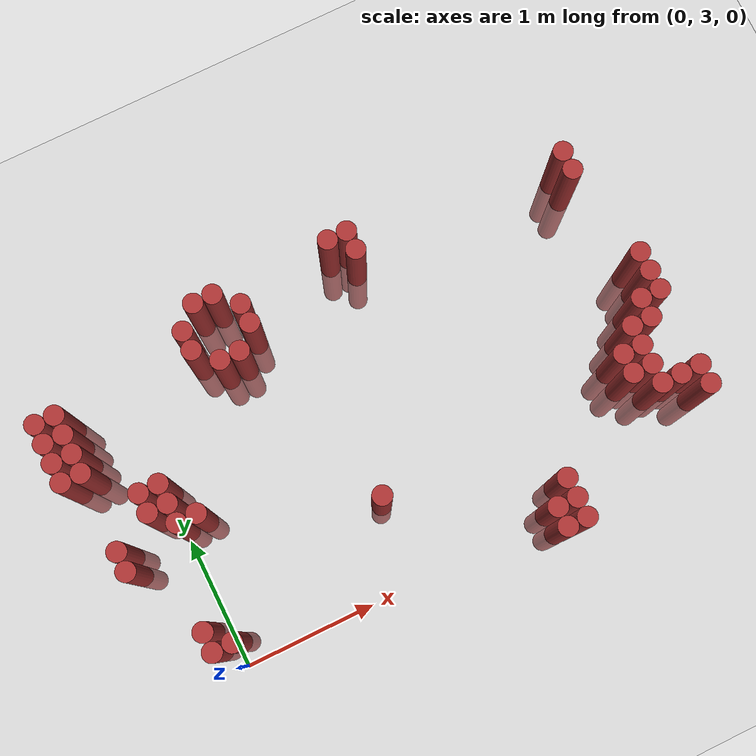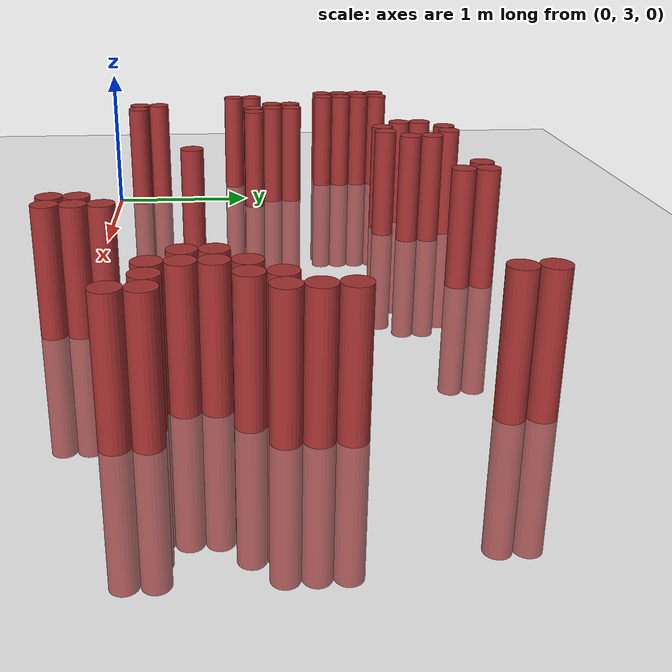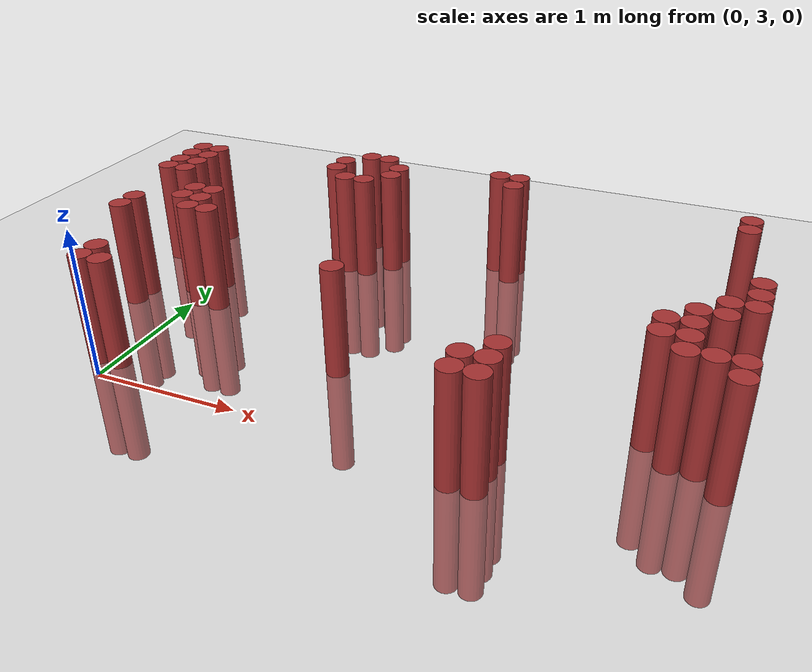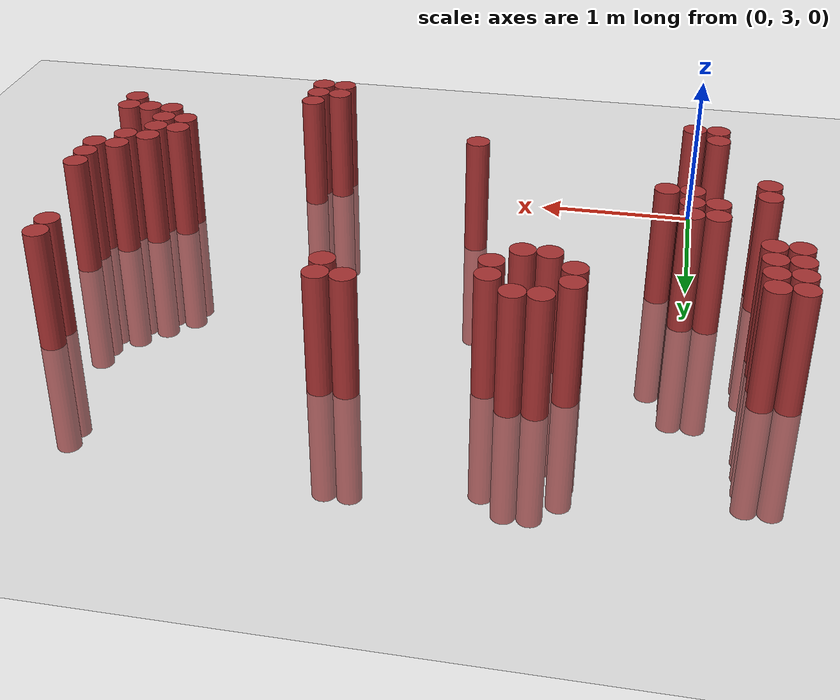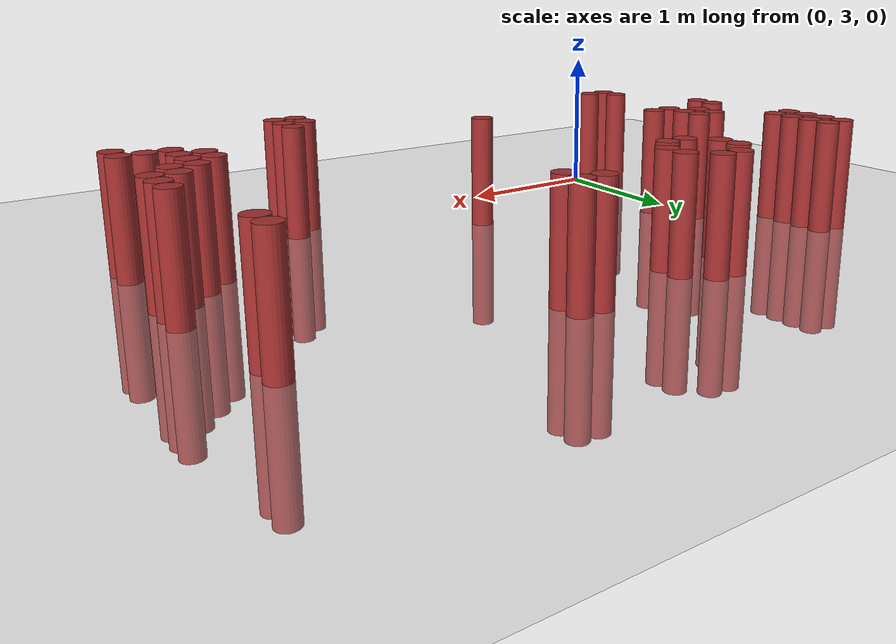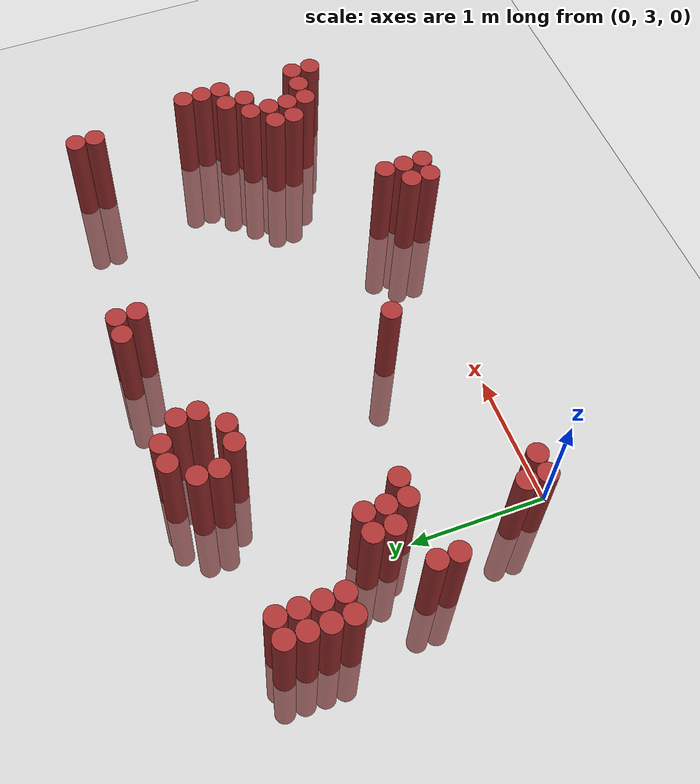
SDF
<sdf version="1.6">
 <world name="default">
  <model name="ground_plane">
   <static>1</static>
   <link name="link">
    <collision name="collision">
     <geometry><plane><normal>0 0 1</normal><size>100 100</size></plane></geometry>
     <surface><friction><ode><mu>100</mu><mu2>50</mu2></ode></friction></surface>
    </collision>
    <visual name="visual">
     <cast_shadows>0</cast_shadows>
     <geometry><plane><normal>0 0 1</normal><size>100 100</size></plane></geometry>
     <material>
      <script><uri>file://media/materials/scripts/gazebo.material</uri><name>Gazebo/Grey</name></script>
     </material>
    </visual>
   </link>
  </model>
  <model name="unit_cylinder_441">
   <static>1</static>
   <pose>-0.575000 4.675000 0.000000 0.000000 0.000000 0.000000</pose>
   <link name="link">
    <inertial>
     <mass>1</mass>
     <inertia><ixx>0.145833</ixx><ixy>0</ixy><ixz>0</ixz><iyy>0.145833</iyy><iyz>0</iyz><izz>0.125</izz></inertia>
    </inertial>
    <collision name="collision">
     <geometry><cylinder><radius>0.075000</radius><length>1.5</length></cylinder></geometry>
    </collision>
    <visual name="visual">
     <geometry><cylinder><radius>0.075000</radius><length>1.5</length></cylinder></geometry>
     <material>
      <ambient>0.648000 0.192000 0.192000 1</ambient>
      <diffuse>0.648000 0.192000 0.192000 1</diffuse>
     </material>
     <material>
      <script><name>Gazebo/Grey</name><uri>file://media/materials/scripts/gazebo.material</uri></script>
     </material>
    </visual>
   </link>
  </model>
  <model name="unit_cylinder_442">
   <static>1</static>
   <pose>-0.575000 4.825000 0.000000 0.000000 0.000000 0.000000</pose>
   <link name="link">
    <inertial>
     <mass>1</mass>
     <inertia><ixx>0.145833</ixx><ixy>0</ixy><ixz>0</ixz><iyy>0.145833</iyy><iyz>0</iyz><izz>0.125</izz></inertia>
    </inertial>
    <collision name="collision">
     <geometry><cylinder><radius>0.075000</radius><length>1.5</length></cylinder></geometry>
    </collision>
    <visual name="visual">
     <geometry><cylinder><radius>0.075000</radius><length>1.5</length></cylinder></geometry>
     <material>
      <ambient>0.648000 0.192000 0.192000 1</ambient>
      <diffuse>0.648000 0.192000 0.192000 1</diffuse>
     </material>
     <material>
      <script><name>Gazebo/Grey</name><uri>file://media/materials/scripts/gazebo.material</uri></script>
     </material>
    </visual>
   </link>
  </model>
  <model name="unit_cylinder_443">
   <static>1</static>
   <pose>-0.575000 4.975000 0.000000 0.000000 0.000000 0.000000</pose>
   <link name="link">
    <inertial>
     <mass>1</mass>
     <inertia><ixx>0.145833</ixx><ixy>0</ixy><ixz>0</ixz><iyy>0.145833</iyy><iyz>0</iyz><izz>0.125</izz></inertia>
    </inertial>
    <collision name="collision">
     <geometry><cylinder><radius>0.075000</radius><length>1.5</length></cylinder></geometry>
    </collision>
    <visual name="visual">
     <geometry><cylinder><radius>0.075000</radius><length>1.5</length></cylinder></geometry>
     <material>
      <ambient>0.648000 0.192000 0.192000 1</ambient>
      <diffuse>0.648000 0.192000 0.192000 1</diffuse>
     </material>
     <material>
      <script><name>Gazebo/Grey</name><uri>file://media/materials/scripts/gazebo.material</uri></script>
     </material>
    </visual>
   </link>
  </model>
  <model name="unit_cylinder_444">
   <static>1</static>
   <pose>-0.575000 5.125000 0.000000 0.000000 0.000000 0.000000</pose>
   <link name="link">
    <inertial>
     <mass>1</mass>
     <inertia><ixx>0.145833</ixx><ixy>0</ixy><ixz>0</ixz><iyy>0.145833</iyy><iyz>0</iyz><izz>0.125</izz></inertia>
    </inertial>
    <collision name="collision">
     <geometry><cylinder><radius>0.075000</radius><length>1.5</length></cylinder></geometry>
    </collision>
    <visual name="visual">
     <geometry><cylinder><radius>0.075000</radius><length>1.5</length></cylinder></geometry>
     <material>
      <ambient>0.648000 0.192000 0.192000 1</ambient>
      <diffuse>0.648000 0.192000 0.192000 1</diffuse>
     </material>
     <material>
      <script><name>Gazebo/Grey</name><uri>file://media/materials/scripts/gazebo.material</uri></script>
     </material>
    </visual>
   </link>
  </model>
  <model name="unit_cylinder_446">
   <static>1</static>
   <pose>-0.425000 3.925000 0.000000 0.000000 0.000000 0.000000</pose>
   <link name="link">
    <inertial>
     <mass>1</mass>
     <inertia><ixx>0.145833</ixx><ixy>0</ixy><ixz>0</ixz><iyy>0.145833</iyy><iyz>0</iyz><izz>0.125</izz></inertia>
    </inertial>
    <collision name="collision">
     <geometry><cylinder><radius>0.075000</radius><length>1.5</length></cylinder></geometry>
    </collision>
    <visual name="visual">
     <geometry><cylinder><radius>0.075000</radius><length>1.5</length></cylinder></geometry>
     <material>
      <ambient>0.648000 0.192000 0.192000 1</ambient>
      <diffuse>0.648000 0.192000 0.192000 1</diffuse>
     </material>
     <material>
      <script><name>Gazebo/Grey</name><uri>file://media/materials/scripts/gazebo.material</uri></script>
     </material>
    </visual>
   </link>
  </model>
  <model name="unit_cylinder_447">
   <static>1</static>
   <pose>-0.425000 4.075000 0.000000 0.000000 0.000000 0.000000</pose>
   <link name="link">
    <inertial>
     <mass>1</mass>
     <inertia><ixx>0.145833</ixx><ixy>0</ixy><ixz>0</ixz><iyy>0.145833</iyy><iyz>0</iyz><izz>0.125</izz></inertia>
    </inertial>
    <collision name="collision">
     <geometry><cylinder><radius>0.075000</radius><length>1.5</length></cylinder></geometry>
    </collision>
    <visual name="visual">
     <geometry><cylinder><radius>0.075000</radius><length>1.5</length></cylinder></geometry>
     <material>
      <ambient>0.648000 0.192000 0.192000 1</ambient>
      <diffuse>0.648000 0.192000 0.192000 1</diffuse>
     </material>
     <material>
      <script><name>Gazebo/Grey</name><uri>file://media/materials/scripts/gazebo.material</uri></script>
     </material>
    </visual>
   </link>
  </model>
  <model name="unit_cylinder_448">
   <static>1</static>
   <pose>-0.425000 4.675000 0.000000 0.000000 0.000000 0.000000</pose>
   <link name="link">
    <inertial>
     <mass>1</mass>
     <inertia><ixx>0.145833</ixx><ixy>0</ixy><ixz>0</ixz><iyy>0.145833</iyy><iyz>0</iyz><izz>0.125</izz></inertia>
    </inertial>
    <collision name="collision">
     <geometry><cylinder><radius>0.075000</radius><length>1.5</length></cylinder></geometry>
    </collision>
    <visual name="visual">
     <geometry><cylinder><radius>0.075000</radius><length>1.5</length></cylinder></geometry>
     <material>
      <ambient>0.648000 0.192000 0.192000 1</ambient>
      <diffuse>0.648000 0.192000 0.192000 1</diffuse>
     </material>
     <material>
      <script><name>Gazebo/Grey</name><uri>file://media/materials/scripts/gazebo.material</uri></script>
     </material>
    </visual>
   </link>
  </model>
  <model name="unit_cylinder_449">
   <static>1</static>
   <pose>-0.425000 4.825000 0.000000 0.000000 0.000000 0.000000</pose>
   <link name="link">
    <inertial>
     <mass>1</mass>
     <inertia><ixx>0.145833</ixx><ixy>0</ixy><ixz>0</ixz><iyy>0.145833</iyy><iyz>0</iyz><izz>0.125</izz></inertia>
    </inertial>
    <collision name="collision">
     <geometry><cylinder><radius>0.075000</radius><length>1.5</length></cylinder></geometry>
    </collision>
    <visual name="visual">
     <geometry><cylinder><radius>0.075000</radius><length>1.5</length></cylinder></geometry>
     <material>
      <ambient>0.648000 0.192000 0.192000 1</ambient>
      <diffuse>0.648000 0.192000 0.192000 1</diffuse>
     </material>
     <material>
      <script><name>Gazebo/Grey</name><uri>file://media/materials/scripts/gazebo.material</uri></script>
     </material>
    </visual>
   </link>
  </model>
  <model name="unit_cylinder_450">
   <static>1</static>
   <pose>-0.425000 4.975000 0.000000 0.000000 0.000000 0.000000</pose>
   <link name="link">
    <inertial>
     <mass>1</mass>
     <inertia><ixx>0.145833</ixx><ixy>0</ixy><ixz>0</ixz><iyy>0.145833</iyy><iyz>0</iyz><izz>0.125</izz></inertia>
    </inertial>
    <collision name="collision">
     <geometry><cylinder><radius>0.075000</radius><length>1.5</length></cylinder></geometry>
    </collision>
    <visual name="visual">
     <geometry><cylinder><radius>0.075000</radius><length>1.5</length></cylinder></geometry>
     <material>
      <ambient>0.648000 0.192000 0.192000 1</ambient>
      <diffuse>0.648000 0.192000 0.192000 1</diffuse>
     </material>
     <material>
      <script><name>Gazebo/Grey</name><uri>file://media/materials/scripts/gazebo.material</uri></script>
     </material>
    </visual>
   </link>
  </model>
  <model name="unit_cylinder_451">
   <static>1</static>
   <pose>-0.425000 5.125000 0.000000 0.000000 0.000000 0.000000</pose>
   <link name="link">
    <inertial>
     <mass>1</mass>
     <inertia><ixx>0.145833</ixx><ixy>0</ixy><ixz>0</ixz><iyy>0.145833</iyy><iyz>0</iyz><izz>0.125</izz></inertia>
    </inertial>
    <collision name="collision">
     <geometry><cylinder><radius>0.075000</radius><length>1.5</length></cylinder></geometry>
    </collision>
    <visual name="visual">
     <geometry><cylinder><radius>0.075000</radius><length>1.5</length></cylinder></geometry>
     <material>
      <ambient>0.648000 0.192000 0.192000 1</ambient>
      <diffuse>0.648000 0.192000 0.192000 1</diffuse>
     </material>
     <material>
      <script><name>Gazebo/Grey</name><uri>file://media/materials/scripts/gazebo.material</uri></script>
     </material>
    </visual>
   </link>
  </model>
  <model name="unit_cylinder_457">
   <static>1</static>
   <pose>-0.125000 3.175000 0.000000 0.000000 0.000000 0.000000</pose>
   <link name="link">
    <inertial>
     <mass>1</mass>
     <inertia><ixx>0.145833</ixx><ixy>0</ixy><ixz>0</ixz><iyy>0.145833</iyy><iyz>0</iyz><izz>0.125</izz></inertia>
    </inertial>
    <collision name="collision">
     <geometry><cylinder><radius>0.075000</radius><length>1.5</length></cylinder></geometry>
    </collision>
    <visual name="visual">
     <geometry><cylinder><radius>0.075000</radius><length>1.5</length></cylinder></geometry>
     <material>
      <ambient>0.648000 0.192000 0.192000 1</ambient>
      <diffuse>0.648000 0.192000 0.192000 1</diffuse>
     </material>
     <material>
      <script><name>Gazebo/Grey</name><uri>file://media/materials/scripts/gazebo.material</uri></script>
     </material>
    </visual>
   </link>
  </model>
  <model name="unit_cylinder_458">
   <static>1</static>
   <pose>-0.125000 3.325000 0.000000 0.000000 0.000000 0.000000</pose>
   <link name="link">
    <inertial>
     <mass>1</mass>
     <inertia><ixx>0.145833</ixx><ixy>0</ixy><ixz>0</ixz><iyy>0.145833</iyy><iyz>0</iyz><izz>0.125</izz></inertia>
    </inertial>
    <collision name="collision">
     <geometry><cylinder><radius>0.075000</radius><length>1.5</length></cylinder></geometry>
    </collision>
    <visual name="visual">
     <geometry><cylinder><radius>0.075000</radius><length>1.5</length></cylinder></geometry>
     <material>
      <ambient>0.648000 0.192000 0.192000 1</ambient>
      <diffuse>0.648000 0.192000 0.192000 1</diffuse>
     </material>
     <material>
      <script><name>Gazebo/Grey</name><uri>file://media/materials/scripts/gazebo.material</uri></script>
     </material>
    </visual>
   </link>
  </model>
  <model name="unit_cylinder_459">
   <static>1</static>
   <pose>-0.125000 4.225000 0.000000 0.000000 0.000000 0.000000</pose>
   <link name="link">
    <inertial>
     <mass>1</mass>
     <inertia><ixx>0.145833</ixx><ixy>0</ixy><ixz>0</ixz><iyy>0.145833</iyy><iyz>0</iyz><izz>0.125</izz></inertia>
    </inertial>
    <collision name="collision">
     <geometry><cylinder><radius>0.075000</radius><length>1.5</length></cylinder></geometry>
    </collision>
    <visual name="visual">
     <geometry><cylinder><radius>0.075000</radius><length>1.5</length></cylinder></geometry>
     <material>
      <ambient>0.648000 0.192000 0.192000 1</ambient>
      <diffuse>0.648000 0.192000 0.192000 1</diffuse>
     </material>
     <material>
      <script><name>Gazebo/Grey</name><uri>file://media/materials/scripts/gazebo.material</uri></script>
     </material>
    </visual>
   </link>
  </model>
  <model name="unit_cylinder_460">
   <static>1</static>
   <pose>-0.125000 4.375000 0.000000 0.000000 0.000000 0.000000</pose>
   <link name="link">
    <inertial>
     <mass>1</mass>
     <inertia><ixx>0.145833</ixx><ixy>0</ixy><ixz>0</ixz><iyy>0.145833</iyy><iyz>0</iyz><izz>0.125</izz></inertia>
    </inertial>
    <collision name="collision">
     <geometry><cylinder><radius>0.075000</radius><length>1.5</length></cylinder></geometry>
    </collision>
    <visual name="visual">
     <geometry><cylinder><radius>0.075000</radius><length>1.5</length></cylinder></geometry>
     <material>
      <ambient>0.648000 0.192000 0.192000 1</ambient>
      <diffuse>0.648000 0.192000 0.192000 1</diffuse>
     </material>
     <material>
      <script><name>Gazebo/Grey</name><uri>file://media/materials/scripts/gazebo.material</uri></script>
     </material>
    </visual>
   </link>
  </model>
  <model name="unit_cylinder_463">
   <static>1</static>
   <pose>0.025000 3.175000 0.000000 0.000000 0.000000 0.000000</pose>
   <link name="link">
    <inertial>
     <mass>1</mass>
     <inertia><ixx>0.145833</ixx><ixy>0</ixy><ixz>0</ixz><iyy>0.145833</iyy><iyz>0</iyz><izz>0.125</izz></inertia>
    </inertial>
    <collision name="collision">
     <geometry><cylinder><radius>0.075000</radius><length>1.5</length></cylinder></geometry>
    </collision>
    <visual name="visual">
     <geometry><cylinder><radius>0.075000</radius><length>1.5</length></cylinder></geometry>
     <material>
      <ambient>0.648000 0.192000 0.192000 1</ambient>
      <diffuse>0.648000 0.192000 0.192000 1</diffuse>
     </material>
     <material>
      <script><name>Gazebo/Grey</name><uri>file://media/materials/scripts/gazebo.material</uri></script>
     </material>
    </visual>
   </link>
  </model>
  <model name="unit_cylinder_464">
   <static>1</static>
   <pose>0.025000 4.075000 0.000000 0.000000 0.000000 0.000000</pose>
   <link name="link">
    <inertial>
     <mass>1</mass>
     <inertia><ixx>0.145833</ixx><ixy>0</ixy><ixz>0</ixz><iyy>0.145833</iyy><iyz>0</iyz><izz>0.125</izz></inertia>
    </inertial>
    <collision name="collision">
     <geometry><cylinder><radius>0.075000</radius><length>1.5</length></cylinder></geometry>
    </collision>
    <visual name="visual">
     <geometry><cylinder><radius>0.075000</radius><length>1.5</length></cylinder></geometry>
     <material>
      <ambient>0.648000 0.192000 0.192000 1</ambient>
      <diffuse>0.648000 0.192000 0.192000 1</diffuse>
     </material>
     <material>
      <script><name>Gazebo/Grey</name><uri>file://media/materials/scripts/gazebo.material</uri></script>
     </material>
    </visual>
   </link>
  </model>
  <model name="unit_cylinder_465">
   <static>1</static>
   <pose>0.025000 4.225000 0.000000 0.000000 0.000000 0.000000</pose>
   <link name="link">
    <inertial>
     <mass>1</mass>
     <inertia><ixx>0.145833</ixx><ixy>0</ixy><ixz>0</ixz><iyy>0.145833</iyy><iyz>0</iyz><izz>0.125</izz></inertia>
    </inertial>
    <collision name="collision">
     <geometry><cylinder><radius>0.075000</radius><length>1.5</length></cylinder></geometry>
    </collision>
    <visual name="visual">
     <geometry><cylinder><radius>0.075000</radius><length>1.5</length></cylinder></geometry>
     <material>
      <ambient>0.648000 0.192000 0.192000 1</ambient>
      <diffuse>0.648000 0.192000 0.192000 1</diffuse>
     </material>
     <material>
      <script><name>Gazebo/Grey</name><uri>file://media/materials/scripts/gazebo.material</uri></script>
     </material>
    </visual>
   </link>
  </model>
  <model name="unit_cylinder_466">
   <static>1</static>
   <pose>0.025000 4.375000 0.000000 0.000000 0.000000 0.000000</pose>
   <link name="link">
    <inertial>
     <mass>1</mass>
     <inertia><ixx>0.145833</ixx><ixy>0</ixy><ixz>0</ixz><iyy>0.145833</iyy><iyz>0</iyz><izz>0.125</izz></inertia>
    </inertial>
    <collision name="collision">
     <geometry><cylinder><radius>0.075000</radius><length>1.5</length></cylinder></geometry>
    </collision>
    <visual name="visual">
     <geometry><cylinder><radius>0.075000</radius><length>1.5</length></cylinder></geometry>
     <material>
      <ambient>0.648000 0.192000 0.192000 1</ambient>
      <diffuse>0.648000 0.192000 0.192000 1</diffuse>
     </material>
     <material>
      <script><name>Gazebo/Grey</name><uri>file://media/materials/scripts/gazebo.material</uri></script>
     </material>
    </visual>
   </link>
  </model>
  <model name="unit_cylinder_467">
   <static>1</static>
   <pose>0.175000 4.075000 0.000000 0.000000 0.000000 0.000000</pose>
   <link name="link">
    <inertial>
     <mass>1</mass>
     <inertia><ixx>0.145833</ixx><ixy>0</ixy><ixz>0</ixz><iyy>0.145833</iyy><iyz>0</iyz><izz>0.125</izz></inertia>
    </inertial>
    <collision name="collision">
     <geometry><cylinder><radius>0.075000</radius><length>1.5</length></cylinder></geometry>
    </collision>
    <visual name="visual">
     <geometry><cylinder><radius>0.075000</radius><length>1.5</length></cylinder></geometry>
     <material>
      <ambient>0.648000 0.192000 0.192000 1</ambient>
      <diffuse>0.648000 0.192000 0.192000 1</diffuse>
     </material>
     <material>
      <script><name>Gazebo/Grey</name><uri>file://media/materials/scripts/gazebo.material</uri></script>
     </material>
    </visual>
   </link>
  </model>
  <model name="unit_cylinder_473">
   <static>1</static>
   <pose>0.625000 5.125000 0.000000 0.000000 0.000000 0.000000</pose>
   <link name="link">
    <inertial>
     <mass>1</mass>
     <inertia><ixx>0.145833</ixx><ixy>0</ixy><ixz>0</ixz><iyy>0.145833</iyy><iyz>0</iyz><izz>0.125</izz></inertia>
    </inertial>
    <collision name="collision">
     <geometry><cylinder><radius>0.075000</radius><length>1.5</length></cylinder></geometry>
    </collision>
    <visual name="visual">
     <geometry><cylinder><radius>0.075000</radius><length>1.5</length></cylinder></geometry>
     <material>
      <ambient>0.648000 0.192000 0.192000 1</ambient>
      <diffuse>0.648000 0.192000 0.192000 1</diffuse>
     </material>
     <material>
      <script><name>Gazebo/Grey</name><uri>file://media/materials/scripts/gazebo.material</uri></script>
     </material>
    </visual>
   </link>
  </model>
  <model name="unit_cylinder_474">
   <static>1</static>
   <pose>0.625000 5.275000 0.000000 0.000000 0.000000 0.000000</pose>
   <link name="link">
    <inertial>
     <mass>1</mass>
     <inertia><ixx>0.145833</ixx><ixy>0</ixy><ixz>0</ixz><iyy>0.145833</iyy><iyz>0</iyz><izz>0.125</izz></inertia>
    </inertial>
    <collision name="collision">
     <geometry><cylinder><radius>0.075000</radius><length>1.5</length></cylinder></geometry>
    </collision>
    <visual name="visual">
     <geometry><cylinder><radius>0.075000</radius><length>1.5</length></cylinder></geometry>
     <material>
      <ambient>0.648000 0.192000 0.192000 1</ambient>
      <diffuse>0.648000 0.192000 0.192000 1</diffuse>
     </material>
     <material>
      <script><name>Gazebo/Grey</name><uri>file://media/materials/scripts/gazebo.material</uri></script>
     </material>
    </visual>
   </link>
  </model>
  <model name="unit_cylinder_476">
   <static>1</static>
   <pose>0.775000 4.975000 0.000000 0.000000 0.000000 0.000000</pose>
   <link name="link">
    <inertial>
     <mass>1</mass>
     <inertia><ixx>0.145833</ixx><ixy>0</ixy><ixz>0</ixz><iyy>0.145833</iyy><iyz>0</iyz><izz>0.125</izz></inertia>
    </inertial>
    <collision name="collision">
     <geometry><cylinder><radius>0.075000</radius><length>1.5</length></cylinder></geometry>
    </collision>
    <visual name="visual">
     <geometry><cylinder><radius>0.075000</radius><length>1.5</length></cylinder></geometry>
     <material>
      <ambient>0.648000 0.192000 0.192000 1</ambient>
      <diffuse>0.648000 0.192000 0.192000 1</diffuse>
     </material>
     <material>
      <script><name>Gazebo/Grey</name><uri>file://media/materials/scripts/gazebo.material</uri></script>
     </material>
    </visual>
   </link>
  </model>
  <model name="unit_cylinder_477">
   <static>1</static>
   <pose>0.775000 5.425000 0.000000 0.000000 0.000000 0.000000</pose>
   <link name="link">
    <inertial>
     <mass>1</mass>
     <inertia><ixx>0.145833</ixx><ixy>0</ixy><ixz>0</ixz><iyy>0.145833</iyy><iyz>0</iyz><izz>0.125</izz></inertia>
    </inertial>
    <collision name="collision">
     <geometry><cylinder><radius>0.075000</radius><length>1.5</length></cylinder></geometry>
    </collision>
    <visual name="visual">
     <geometry><cylinder><radius>0.075000</radius><length>1.5</length></cylinder></geometry>
     <material>
      <ambient>0.648000 0.192000 0.192000 1</ambient>
      <diffuse>0.648000 0.192000 0.192000 1</diffuse>
     </material>
     <material>
      <script><name>Gazebo/Grey</name><uri>file://media/materials/scripts/gazebo.material</uri></script>
     </material>
    </visual>
   </link>
  </model>
  <model name="unit_cylinder_478">
   <static>1</static>
   <pose>0.925000 4.975000 0.000000 0.000000 0.000000 0.000000</pose>
   <link name="link">
    <inertial>
     <mass>1</mass>
     <inertia><ixx>0.145833</ixx><ixy>0</ixy><ixz>0</ixz><iyy>0.145833</iyy><iyz>0</iyz><izz>0.125</izz></inertia>
    </inertial>
    <collision name="collision">
     <geometry><cylinder><radius>0.075000</radius><length>1.5</length></cylinder></geometry>
    </collision>
    <visual name="visual">
     <geometry><cylinder><radius>0.075000</radius><length>1.5</length></cylinder></geometry>
     <material>
      <ambient>0.648000 0.192000 0.192000 1</ambient>
      <diffuse>0.648000 0.192000 0.192000 1</diffuse>
     </material>
     <material>
      <script><name>Gazebo/Grey</name><uri>file://media/materials/scripts/gazebo.material</uri></script>
     </material>
    </visual>
   </link>
  </model>
  <model name="unit_cylinder_479">
   <static>1</static>
   <pose>0.925000 5.425000 0.000000 0.000000 0.000000 0.000000</pose>
   <link name="link">
    <inertial>
     <mass>1</mass>
     <inertia><ixx>0.145833</ixx><ixy>0</ixy><ixz>0</ixz><iyy>0.145833</iyy><iyz>0</iyz><izz>0.125</izz></inertia>
    </inertial>
    <collision name="collision">
     <geometry><cylinder><radius>0.075000</radius><length>1.5</length></cylinder></geometry>
    </collision>
    <visual name="visual">
     <geometry><cylinder><radius>0.075000</radius><length>1.5</length></cylinder></geometry>
     <material>
      <ambient>0.648000 0.192000 0.192000 1</ambient>
      <diffuse>0.648000 0.192000 0.192000 1</diffuse>
     </material>
     <material>
      <script><name>Gazebo/Grey</name><uri>file://media/materials/scripts/gazebo.material</uri></script>
     </material>
    </visual>
   </link>
  </model>
  <model name="unit_cylinder_480">
   <static>1</static>
   <pose>1.075000 5.125000 0.000000 0.000000 0.000000 0.000000</pose>
   <link name="link">
    <inertial>
     <mass>1</mass>
     <inertia><ixx>0.145833</ixx><ixy>0</ixy><ixz>0</ixz><iyy>0.145833</iyy><iyz>0</iyz><izz>0.125</izz></inertia>
    </inertial>
    <collision name="collision">
     <geometry><cylinder><radius>0.075000</radius><length>1.5</length></cylinder></geometry>
    </collision>
    <visual name="visual">
     <geometry><cylinder><radius>0.075000</radius><length>1.5</length></cylinder></geometry>
     <material>
      <ambient>0.648000 0.192000 0.192000 1</ambient>
      <diffuse>0.648000 0.192000 0.192000 1</diffuse>
     </material>
     <material>
      <script><name>Gazebo/Grey</name><uri>file://media/materials/scripts/gazebo.material</uri></script>
     </material>
    </visual>
   </link>
  </model>
  <model name="unit_cylinder_481">
   <static>1</static>
   <pose>1.075000 5.275000 0.000000 0.000000 0.000000 0.000000</pose>
   <link name="link">
    <inertial>
     <mass>1</mass>
     <inertia><ixx>0.145833</ixx><ixy>0</ixy><ixz>0</ixz><iyy>0.145833</iyy><iyz>0</iyz><izz>0.125</izz></inertia>
    </inertial>
    <collision name="collision">
     <geometry><cylinder><radius>0.075000</radius><length>1.5</length></cylinder></geometry>
    </collision>
    <visual name="visual">
     <geometry><cylinder><radius>0.075000</radius><length>1.5</length></cylinder></geometry>
     <material>
      <ambient>0.648000 0.192000 0.192000 1</ambient>
      <diffuse>0.648000 0.192000 0.192000 1</diffuse>
     </material>
     <material>
      <script><name>Gazebo/Grey</name><uri>file://media/materials/scripts/gazebo.material</uri></script>
     </material>
    </visual>
   </link>
  </model>
  <model name="unit_cylinder_482">
   <static>1</static>
   <pose>1.375000 3.625000 0.000000 0.000000 0.000000 0.000000</pose>
   <link name="link">
    <inertial>
     <mass>1</mass>
     <inertia><ixx>0.145833</ixx><ixy>0</ixy><ixz>0</ixz><iyy>0.145833</iyy><iyz>0</iyz><izz>0.125</izz></inertia>
    </inertial>
    <collision name="collision">
     <geometry><cylinder><radius>0.075000</radius><length>1.5</length></cylinder></geometry>
    </collision>
    <visual name="visual">
     <geometry><cylinder><radius>0.075000</radius><length>1.5</length></cylinder></geometry>
     <material>
      <ambient>0.648000 0.192000 0.192000 1</ambient>
      <diffuse>0.648000 0.192000 0.192000 1</diffuse>
     </material>
     <material>
      <script><name>Gazebo/Grey</name><uri>file://media/materials/scripts/gazebo.material</uri></script>
     </material>
    </visual>
   </link>
  </model>
  <model name="unit_cylinder_495">
   <static>1</static>
   <pose>1.825000 5.425000 0.000000 0.000000 0.000000 0.000000</pose>
   <link name="link">
    <inertial>
     <mass>1</mass>
     <inertia><ixx>0.145833</ixx><ixy>0</ixy><ixz>0</ixz><iyy>0.145833</iyy><iyz>0</iyz><izz>0.125</izz></inertia>
    </inertial>
    <collision name="collision">
     <geometry><cylinder><radius>0.075000</radius><length>1.5</length></cylinder></geometry>
    </collision>
    <visual name="visual">
     <geometry><cylinder><radius>0.075000</radius><length>1.5</length></cylinder></geometry>
     <material>
      <ambient>0.648000 0.192000 0.192000 1</ambient>
      <diffuse>0.648000 0.192000 0.192000 1</diffuse>
     </material>
     <material>
      <script><name>Gazebo/Grey</name><uri>file://media/materials/scripts/gazebo.material</uri></script>
     </material>
    </visual>
   </link>
  </model>
  <model name="unit_cylinder_498">
   <static>1</static>
   <pose>1.975000 5.275000 0.000000 0.000000 0.000000 0.000000</pose>
   <link name="link">
    <inertial>
     <mass>1</mass>
     <inertia><ixx>0.145833</ixx><ixy>0</ixy><ixz>0</ixz><iyy>0.145833</iyy><iyz>0</iyz><izz>0.125</izz></inertia>
    </inertial>
    <collision name="collision">
     <geometry><cylinder><radius>0.075000</radius><length>1.5</length></cylinder></geometry>
    </collision>
    <visual name="visual">
     <geometry><cylinder><radius>0.075000</radius><length>1.5</length></cylinder></geometry>
     <material>
      <ambient>0.648000 0.192000 0.192000 1</ambient>
      <diffuse>0.648000 0.192000 0.192000 1</diffuse>
     </material>
     <material>
      <script><name>Gazebo/Grey</name><uri>file://media/materials/scripts/gazebo.material</uri></script>
     </material>
    </visual>
   </link>
  </model>
  <model name="unit_cylinder_499">
   <static>1</static>
   <pose>1.975000 5.425000 0.000000 0.000000 0.000000 0.000000</pose>
   <link name="link">
    <inertial>
     <mass>1</mass>
     <inertia><ixx>0.145833</ixx><ixy>0</ixy><ixz>0</ixz><iyy>0.145833</iyy><iyz>0</iyz><izz>0.125</izz></inertia>
    </inertial>
    <collision name="collision">
     <geometry><cylinder><radius>0.075000</radius><length>1.5</length></cylinder></geometry>
    </collision>
    <visual name="visual">
     <geometry><cylinder><radius>0.075000</radius><length>1.5</length></cylinder></geometry>
     <material>
      <ambient>0.648000 0.192000 0.192000 1</ambient>
      <diffuse>0.648000 0.192000 0.192000 1</diffuse>
     </material>
     <material>
      <script><name>Gazebo/Grey</name><uri>file://media/materials/scripts/gazebo.material</uri></script>
     </material>
    </visual>
   </link>
  </model>
  <model name="unit_cylinder_510">
   <static>1</static>
   <pose>2.425000 2.875000 0.000000 0.000000 0.000000 0.000000</pose>
   <link name="link">
    <inertial>
     <mass>1</mass>
     <inertia><ixx>0.145833</ixx><ixy>0</ixy><ixz>0</ixz><iyy>0.145833</iyy><iyz>0</iyz><izz>0.125</izz></inertia>
    </inertial>
    <collision name="collision">
     <geometry><cylinder><radius>0.075000</radius><length>1.5</length></cylinder></geometry>
    </collision>
    <visual name="visual">
     <geometry><cylinder><radius>0.075000</radius><length>1.5</length></cylinder></geometry>
     <material>
      <ambient>0.648000 0.192000 0.192000 1</ambient>
      <diffuse>0.648000 0.192000 0.192000 1</diffuse>
     </material>
     <material>
      <script><name>Gazebo/Grey</name><uri>file://media/materials/scripts/gazebo.material</uri></script>
     </material>
    </visual>
   </link>
  </model>
  <model name="unit_cylinder_511">
   <static>1</static>
   <pose>2.425000 3.025000 0.000000 0.000000 0.000000 0.000000</pose>
   <link name="link">
    <inertial>
     <mass>1</mass>
     <inertia><ixx>0.145833</ixx><ixy>0</ixy><ixz>0</ixz><iyy>0.145833</iyy><iyz>0</iyz><izz>0.125</izz></inertia>
    </inertial>
    <collision name="collision">
     <geometry><cylinder><radius>0.075000</radius><length>1.5</length></cylinder></geometry>
    </collision>
    <visual name="visual">
     <geometry><cylinder><radius>0.075000</radius><length>1.5</length></cylinder></geometry>
     <material>
      <ambient>0.648000 0.192000 0.192000 1</ambient>
      <diffuse>0.648000 0.192000 0.192000 1</diffuse>
     </material>
     <material>
      <script><name>Gazebo/Grey</name><uri>file://media/materials/scripts/gazebo.material</uri></script>
     </material>
    </visual>
   </link>
  </model>
  <model name="unit_cylinder_517">
   <static>1</static>
   <pose>2.575000 2.875000 0.000000 0.000000 0.000000 0.000000</pose>
   <link name="link">
    <inertial>
     <mass>1</mass>
     <inertia><ixx>0.145833</ixx><ixy>0</ixy><ixz>0</ixz><iyy>0.145833</iyy><iyz>0</iyz><izz>0.125</izz></inertia>
    </inertial>
    <collision name="collision">
     <geometry><cylinder><radius>0.075000</radius><length>1.5</length></cylinder></geometry>
    </collision>
    <visual name="visual">
     <geometry><cylinder><radius>0.075000</radius><length>1.5</length></cylinder></geometry>
     <material>
      <ambient>0.648000 0.192000 0.192000 1</ambient>
      <diffuse>0.648000 0.192000 0.192000 1</diffuse>
     </material>
     <material>
      <script><name>Gazebo/Grey</name><uri>file://media/materials/scripts/gazebo.material</uri></script>
     </material>
    </visual>
   </link>
  </model>
  <model name="unit_cylinder_518">
   <static>1</static>
   <pose>2.575000 3.025000 0.000000 0.000000 0.000000 0.000000</pose>
   <link name="link">
    <inertial>
     <mass>1</mass>
     <inertia><ixx>0.145833</ixx><ixy>0</ixy><ixz>0</ixz><iyy>0.145833</iyy><iyz>0</iyz><izz>0.125</izz></inertia>
    </inertial>
    <collision name="collision">
     <geometry><cylinder><radius>0.075000</radius><length>1.5</length></cylinder></geometry>
    </collision>
    <visual name="visual">
     <geometry><cylinder><radius>0.075000</radius><length>1.5</length></cylinder></geometry>
     <material>
      <ambient>0.648000 0.192000 0.192000 1</ambient>
      <diffuse>0.648000 0.192000 0.192000 1</diffuse>
     </material>
     <material>
      <script><name>Gazebo/Grey</name><uri>file://media/materials/scripts/gazebo.material</uri></script>
     </material>
    </visual>
   </link>
  </model>
  <model name="unit_cylinder_519">
   <static>1</static>
   <pose>2.575000 3.175000 0.000000 0.000000 0.000000 0.000000</pose>
   <link name="link">
    <inertial>
     <mass>1</mass>
     <inertia><ixx>0.145833</ixx><ixy>0</ixy><ixz>0</ixz><iyy>0.145833</iyy><iyz>0</iyz><izz>0.125</izz></inertia>
    </inertial>
    <collision name="collision">
     <geometry><cylinder><radius>0.075000</radius><length>1.5</length></cylinder></geometry>
    </collision>
    <visual name="visual">
     <geometry><cylinder><radius>0.075000</radius><length>1.5</length></cylinder></geometry>
     <material>
      <ambient>0.648000 0.192000 0.192000 1</ambient>
      <diffuse>0.648000 0.192000 0.192000 1</diffuse>
     </material>
     <material>
      <script><name>Gazebo/Grey</name><uri>file://media/materials/scripts/gazebo.material</uri></script>
     </material>
    </visual>
   </link>
  </model>
  <model name="unit_cylinder_532">
   <static>1</static>
   <pose>3.325000 3.625000 0.000000 0.000000 0.000000 0.000000</pose>
   <link name="link">
    <inertial>
     <mass>1</mass>
     <inertia><ixx>0.145833</ixx><ixy>0</ixy><ixz>0</ixz><iyy>0.145833</iyy><iyz>0</iyz><izz>0.125</izz></inertia>
    </inertial>
    <collision name="collision">
     <geometry><cylinder><radius>0.075000</radius><length>1.5</length></cylinder></geometry>
    </collision>
    <visual name="visual">
     <geometry><cylinder><radius>0.075000</radius><length>1.5</length></cylinder></geometry>
     <material>
      <ambient>0.648000 0.192000 0.192000 1</ambient>
      <diffuse>0.648000 0.192000 0.192000 1</diffuse>
     </material>
     <material>
      <script><name>Gazebo/Grey</name><uri>file://media/materials/scripts/gazebo.material</uri></script>
     </material>
    </visual>
   </link>
  </model>
  <model name="unit_cylinder_533">
   <static>1</static>
   <pose>3.325000 3.775000 0.000000 0.000000 0.000000 0.000000</pose>
   <link name="link">
    <inertial>
     <mass>1</mass>
     <inertia><ixx>0.145833</ixx><ixy>0</ixy><ixz>0</ixz><iyy>0.145833</iyy><iyz>0</iyz><izz>0.125</izz></inertia>
    </inertial>
    <collision name="collision">
     <geometry><cylinder><radius>0.075000</radius><length>1.5</length></cylinder></geometry>
    </collision>
    <visual name="visual">
     <geometry><cylinder><radius>0.075000</radius><length>1.5</length></cylinder></geometry>
     <material>
      <ambient>0.648000 0.192000 0.192000 1</ambient>
      <diffuse>0.648000 0.192000 0.192000 1</diffuse>
     </material>
     <material>
      <script><name>Gazebo/Grey</name><uri>file://media/materials/scripts/gazebo.material</uri></script>
     </material>
    </visual>
   </link>
  </model>
  <model name="unit_cylinder_534">
   <static>1</static>
   <pose>3.475000 3.475000 0.000000 0.000000 0.000000 0.000000</pose>
   <link name="link">
    <inertial>
     <mass>1</mass>
     <inertia><ixx>0.145833</ixx><ixy>0</ixy><ixz>0</ixz><iyy>0.145833</iyy><iyz>0</iyz><izz>0.125</izz></inertia>
    </inertial>
    <collision name="collision">
     <geometry><cylinder><radius>0.075000</radius><length>1.5</length></cylinder></geometry>
    </collision>
    <visual name="visual">
     <geometry><cylinder><radius>0.075000</radius><length>1.5</length></cylinder></geometry>
     <material>
      <ambient>0.648000 0.192000 0.192000 1</ambient>
      <diffuse>0.648000 0.192000 0.192000 1</diffuse>
     </material>
     <material>
      <script><name>Gazebo/Grey</name><uri>file://media/materials/scripts/gazebo.material</uri></script>
     </material>
    </visual>
   </link>
  </model>
  <model name="unit_cylinder_535">
   <static>1</static>
   <pose>3.475000 3.625000 0.000000 0.000000 0.000000 0.000000</pose>
   <link name="link">
    <inertial>
     <mass>1</mass>
     <inertia><ixx>0.145833</ixx><ixy>0</ixy><ixz>0</ixz><iyy>0.145833</iyy><iyz>0</iyz><izz>0.125</izz></inertia>
    </inertial>
    <collision name="collision">
     <geometry><cylinder><radius>0.075000</radius><length>1.5</length></cylinder></geometry>
    </collision>
    <visual name="visual">
     <geometry><cylinder><radius>0.075000</radius><length>1.5</length></cylinder></geometry>
     <material>
      <ambient>0.648000 0.192000 0.192000 1</ambient>
      <diffuse>0.648000 0.192000 0.192000 1</diffuse>
     </material>
     <material>
      <script><name>Gazebo/Grey</name><uri>file://media/materials/scripts/gazebo.material</uri></script>
     </material>
    </visual>
   </link>
  </model>
  <model name="unit_cylinder_536">
   <static>1</static>
   <pose>3.475000 3.775000 0.000000 0.000000 0.000000 0.000000</pose>
   <link name="link">
    <inertial>
     <mass>1</mass>
     <inertia><ixx>0.145833</ixx><ixy>0</ixy><ixz>0</ixz><iyy>0.145833</iyy><iyz>0</iyz><izz>0.125</izz></inertia>
    </inertial>
    <collision name="collision">
     <geometry><cylinder><radius>0.075000</radius><length>1.5</length></cylinder></geometry>
    </collision>
    <visual name="visual">
     <geometry><cylinder><radius>0.075000</radius><length>1.5</length></cylinder></geometry>
     <material>
      <ambient>0.648000 0.192000 0.192000 1</ambient>
      <diffuse>0.648000 0.192000 0.192000 1</diffuse>
     </material>
     <material>
      <script><name>Gazebo/Grey</name><uri>file://media/materials/scripts/gazebo.material</uri></script>
     </material>
    </visual>
   </link>
  </model>
  <model name="unit_cylinder_537">
   <static>1</static>
   <pose>3.475000 3.925000 0.000000 0.000000 0.000000 0.000000</pose>
   <link name="link">
    <inertial>
     <mass>1</mass>
     <inertia><ixx>0.145833</ixx><ixy>0</ixy><ixz>0</ixz><iyy>0.145833</iyy><iyz>0</iyz><izz>0.125</izz></inertia>
    </inertial>
    <collision name="collision">
     <geometry><cylinder><radius>0.075000</radius><length>1.5</length></cylinder></geometry>
    </collision>
    <visual name="visual">
     <geometry><cylinder><radius>0.075000</radius><length>1.5</length></cylinder></geometry>
     <material>
      <ambient>0.648000 0.192000 0.192000 1</ambient>
      <diffuse>0.648000 0.192000 0.192000 1</diffuse>
     </material>
     <material>
      <script><name>Gazebo/Grey</name><uri>file://media/materials/scripts/gazebo.material</uri></script>
     </material>
    </visual>
   </link>
  </model>
  <model name="unit_cylinder_542">
   <static>1</static>
   <pose>3.625000 3.475000 0.000000 0.000000 0.000000 0.000000</pose>
   <link name="link">
    <inertial>
     <mass>1</mass>
     <inertia><ixx>0.145833</ixx><ixy>0</ixy><ixz>0</ixz><iyy>0.145833</iyy><iyz>0</iyz><izz>0.125</izz></inertia>
    </inertial>
    <collision name="collision">
     <geometry><cylinder><radius>0.075000</radius><length>1.5</length></cylinder></geometry>
    </collision>
    <visual name="visual">
     <geometry><cylinder><radius>0.075000</radius><length>1.5</length></cylinder></geometry>
     <material>
      <ambient>0.648000 0.192000 0.192000 1</ambient>
      <diffuse>0.648000 0.192000 0.192000 1</diffuse>
     </material>
     <material>
      <script><name>Gazebo/Grey</name><uri>file://media/materials/scripts/gazebo.material</uri></script>
     </material>
    </visual>
   </link>
  </model>
  <model name="unit_cylinder_543">
   <static>1</static>
   <pose>3.625000 3.925000 0.000000 0.000000 0.000000 0.000000</pose>
   <link name="link">
    <inertial>
     <mass>1</mass>
     <inertia><ixx>0.145833</ixx><ixy>0</ixy><ixz>0</ixz><iyy>0.145833</iyy><iyz>0</iyz><izz>0.125</izz></inertia>
    </inertial>
    <collision name="collision">
     <geometry><cylinder><radius>0.075000</radius><length>1.5</length></cylinder></geometry>
    </collision>
    <visual name="visual">
     <geometry><cylinder><radius>0.075000</radius><length>1.5</length></cylinder></geometry>
     <material>
      <ambient>0.648000 0.192000 0.192000 1</ambient>
      <diffuse>0.648000 0.192000 0.192000 1</diffuse>
     </material>
     <material>
      <script><name>Gazebo/Grey</name><uri>file://media/materials/scripts/gazebo.material</uri></script>
     </material>
    </visual>
   </link>
  </model>
  <model name="unit_cylinder_544">
   <static>1</static>
   <pose>3.625000 4.075000 0.000000 0.000000 0.000000 0.000000</pose>
   <link name="link">
    <inertial>
     <mass>1</mass>
     <inertia><ixx>0.145833</ixx><ixy>0</ixy><ixz>0</ixz><iyy>0.145833</iyy><iyz>0</iyz><izz>0.125</izz></inertia>
    </inertial>
    <collision name="collision">
     <geometry><cylinder><radius>0.075000</radius><length>1.5</length></cylinder></geometry>
    </collision>
    <visual name="visual">
     <geometry><cylinder><radius>0.075000</radius><length>1.5</length></cylinder></geometry>
     <material>
      <ambient>0.648000 0.192000 0.192000 1</ambient>
      <diffuse>0.648000 0.192000 0.192000 1</diffuse>
     </material>
     <material>
      <script><name>Gazebo/Grey</name><uri>file://media/materials/scripts/gazebo.material</uri></script>
     </material>
    </visual>
   </link>
  </model>
  <model name="unit_cylinder_545">
   <static>1</static>
   <pose>3.625000 5.125000 0.000000 0.000000 0.000000 0.000000</pose>
   <link name="link">
    <inertial>
     <mass>1</mass>
     <inertia><ixx>0.145833</ixx><ixy>0</ixy><ixz>0</ixz><iyy>0.145833</iyy><iyz>0</iyz><izz>0.125</izz></inertia>
    </inertial>
    <collision name="collision">
     <geometry><cylinder><radius>0.075000</radius><length>1.5</length></cylinder></geometry>
    </collision>
    <visual name="visual">
     <geometry><cylinder><radius>0.075000</radius><length>1.5</length></cylinder></geometry>
     <material>
      <ambient>0.648000 0.192000 0.192000 1</ambient>
      <diffuse>0.648000 0.192000 0.192000 1</diffuse>
     </material>
     <material>
      <script><name>Gazebo/Grey</name><uri>file://media/materials/scripts/gazebo.material</uri></script>
     </material>
    </visual>
   </link>
  </model>
  <model name="unit_cylinder_546">
   <static>1</static>
   <pose>3.625000 5.275000 0.000000 0.000000 0.000000 0.000000</pose>
   <link name="link">
    <inertial>
     <mass>1</mass>
     <inertia><ixx>0.145833</ixx><ixy>0</ixy><ixz>0</ixz><iyy>0.145833</iyy><iyz>0</iyz><izz>0.125</izz></inertia>
    </inertial>
    <collision name="collision">
     <geometry><cylinder><radius>0.075000</radius><length>1.5</length></cylinder></geometry>
    </collision>
    <visual name="visual">
     <geometry><cylinder><radius>0.075000</radius><length>1.5</length></cylinder></geometry>
     <material>
      <ambient>0.648000 0.192000 0.192000 1</ambient>
      <diffuse>0.648000 0.192000 0.192000 1</diffuse>
     </material>
     <material>
      <script><name>Gazebo/Grey</name><uri>file://media/materials/scripts/gazebo.material</uri></script>
     </material>
    </visual>
   </link>
  </model>
  <model name="unit_cylinder_565">
   <static>1</static>
   <pose>3.775000 3.325000 0.000000 0.000000 0.000000 0.000000</pose>
   <link name="link">
    <inertial>
     <mass>1</mass>
     <inertia><ixx>0.145833</ixx><ixy>0</ixy><ixz>0</ixz><iyy>0.145833</iyy><iyz>0</iyz><izz>0.125</izz></inertia>
    </inertial>
    <collision name="collision">
     <geometry><cylinder><radius>0.075000</radius><length>1.5</length></cylinder></geometry>
    </collision>
    <visual name="visual">
     <geometry><cylinder><radius>0.075000</radius><length>1.5</length></cylinder></geometry>
     <material>
      <ambient>0.648000 0.192000 0.192000 1</ambient>
      <diffuse>0.648000 0.192000 0.192000 1</diffuse>
     </material>
     <material>
      <script><name>Gazebo/Grey</name><uri>file://media/materials/scripts/gazebo.material</uri></script>
     </material>
    </visual>
   </link>
  </model>
  <model name="unit_cylinder_566">
   <static>1</static>
   <pose>3.775000 3.475000 0.000000 0.000000 0.000000 0.000000</pose>
   <link name="link">
    <inertial>
     <mass>1</mass>
     <inertia><ixx>0.145833</ixx><ixy>0</ixy><ixz>0</ixz><iyy>0.145833</iyy><iyz>0</iyz><izz>0.125</izz></inertia>
    </inertial>
    <collision name="collision">
     <geometry><cylinder><radius>0.075000</radius><length>1.5</length></cylinder></geometry>
    </collision>
    <visual name="visual">
     <geometry><cylinder><radius>0.075000</radius><length>1.5</length></cylinder></geometry>
     <material>
      <ambient>0.648000 0.192000 0.192000 1</ambient>
      <diffuse>0.648000 0.192000 0.192000 1</diffuse>
     </material>
     <material>
      <script><name>Gazebo/Grey</name><uri>file://media/materials/scripts/gazebo.material</uri></script>
     </material>
    </visual>
   </link>
  </model>
  <model name="unit_cylinder_567">
   <static>1</static>
   <pose>3.775000 4.075000 0.000000 0.000000 0.000000 0.000000</pose>
   <link name="link">
    <inertial>
     <mass>1</mass>
     <inertia><ixx>0.145833</ixx><ixy>0</ixy><ixz>0</ixz><iyy>0.145833</iyy><iyz>0</iyz><izz>0.125</izz></inertia>
    </inertial>
    <collision name="collision">
     <geometry><cylinder><radius>0.075000</radius><length>1.5</length></cylinder></geometry>
    </collision>
    <visual name="visual">
     <geometry><cylinder><radius>0.075000</radius><length>1.5</length></cylinder></geometry>
     <material>
      <ambient>0.648000 0.192000 0.192000 1</ambient>
      <diffuse>0.648000 0.192000 0.192000 1</diffuse>
     </material>
     <material>
      <script><name>Gazebo/Grey</name><uri>file://media/materials/scripts/gazebo.material</uri></script>
     </material>
    </visual>
   </link>
  </model>
  <model name="unit_cylinder_568">
   <static>1</static>
   <pose>3.775000 4.225000 0.000000 0.000000 0.000000 0.000000</pose>
   <link name="link">
    <inertial>
     <mass>1</mass>
     <inertia><ixx>0.145833</ixx><ixy>0</ixy><ixz>0</ixz><iyy>0.145833</iyy><iyz>0</iyz><izz>0.125</izz></inertia>
    </inertial>
    <collision name="collision">
     <geometry><cylinder><radius>0.075000</radius><length>1.5</length></cylinder></geometry>
    </collision>
    <visual name="visual">
     <geometry><cylinder><radius>0.075000</radius><length>1.5</length></cylinder></geometry>
     <material>
      <ambient>0.648000 0.192000 0.192000 1</ambient>
      <diffuse>0.648000 0.192000 0.192000 1</diffuse>
     </material>
     <material>
      <script><name>Gazebo/Grey</name><uri>file://media/materials/scripts/gazebo.material</uri></script>
     </material>
    </visual>
   </link>
  </model>
  <model name="unit_cylinder_569">
   <static>1</static>
   <pose>3.775000 4.375000 0.000000 0.000000 0.000000 0.000000</pose>
   <link name="link">
    <inertial>
     <mass>1</mass>
     <inertia><ixx>0.145833</ixx><ixy>0</ixy><ixz>0</ixz><iyy>0.145833</iyy><iyz>0</iyz><izz>0.125</izz></inertia>
    </inertial>
    <collision name="collision">
     <geometry><cylinder><radius>0.075000</radius><length>1.5</length></cylinder></geometry>
    </collision>
    <visual name="visual">
     <geometry><cylinder><radius>0.075000</radius><length>1.5</length></cylinder></geometry>
     <material>
      <ambient>0.648000 0.192000 0.192000 1</ambient>
      <diffuse>0.648000 0.192000 0.192000 1</diffuse>
     </material>
     <material>
      <script><name>Gazebo/Grey</name><uri>file://media/materials/scripts/gazebo.material</uri></script>
     </material>
    </visual>
   </link>
  </model>
 </world>
</sdf>
